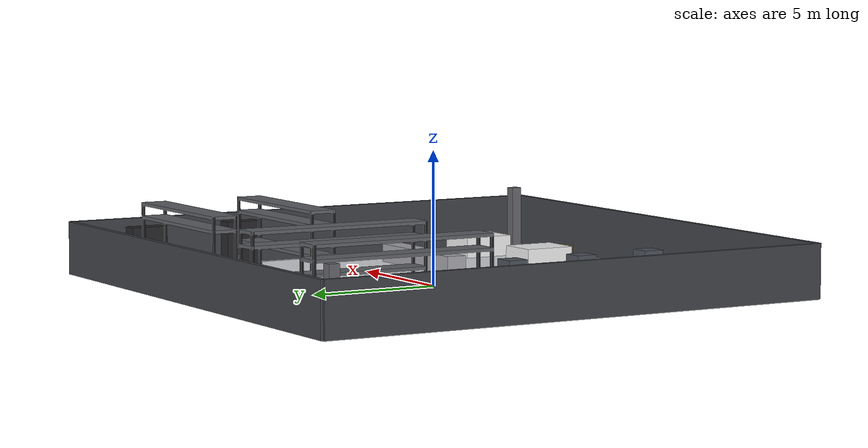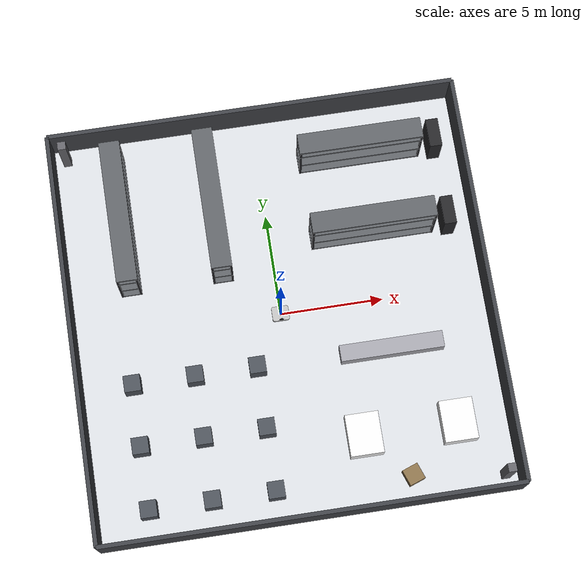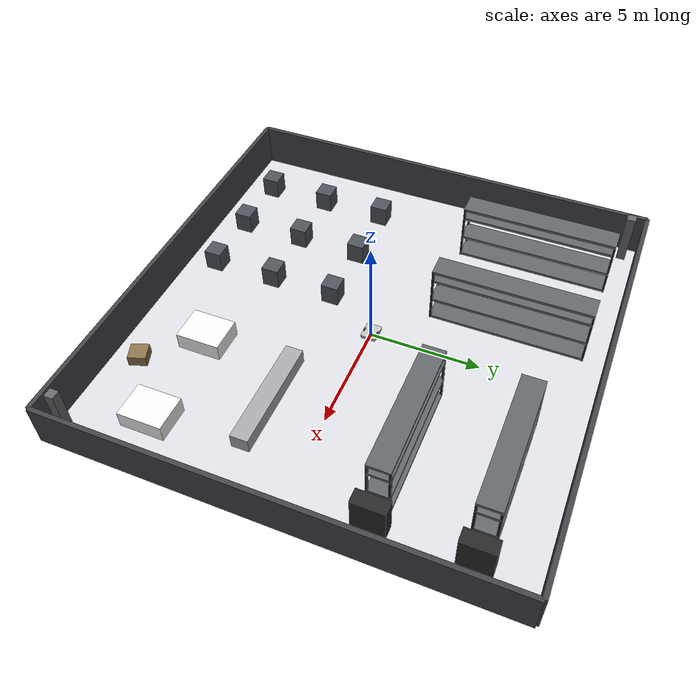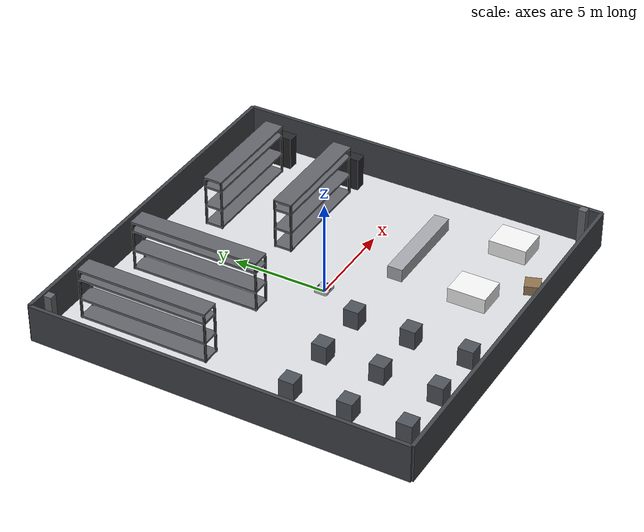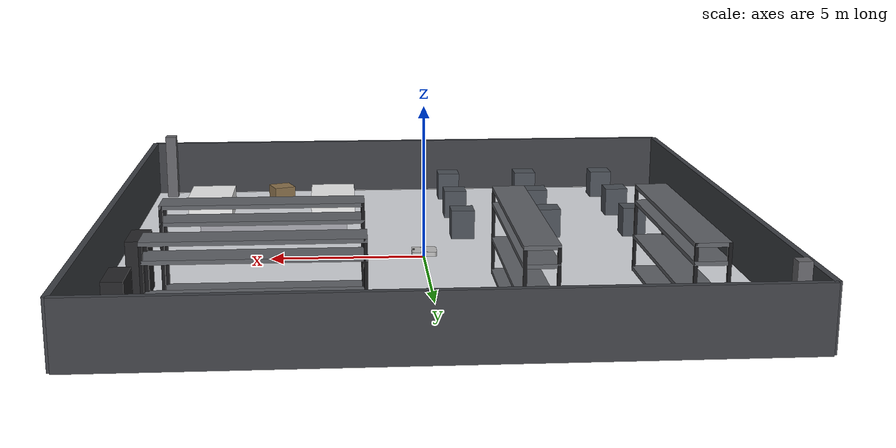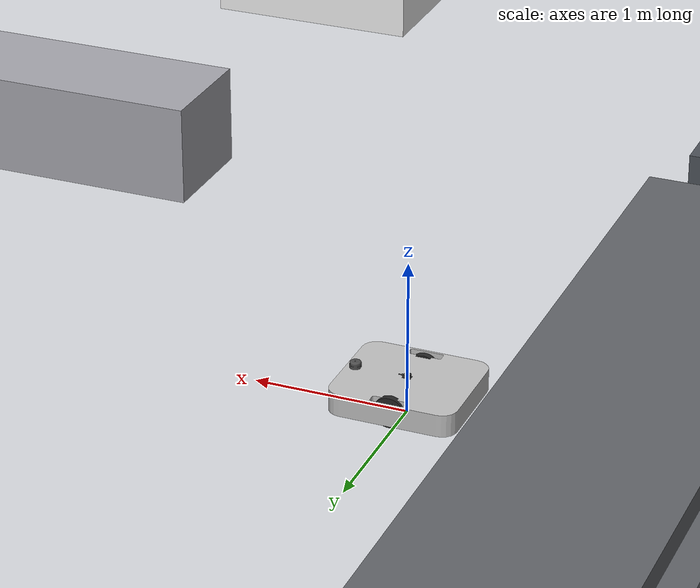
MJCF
<?xml version="1.0" encoding="utf-8"?>
<mujoco model="industrial_warehouse_20x20">

  <compiler angle="degree" meshdir="../meshes" autolimits="true"/>

  <option timestep="0.002" gravity="0 0 -9.81" integrator="implicitfast"/>

  <visual>
    <headlight ambient="0.4 0.4 0.4" diffuse="0.8 0.8 0.8" specular="0.1 0.1 0.1"/>
  </visual>

  <statistic center="0 0 0.2" extent="2.0"/>

  <default>
    <joint damping="0.1" armature="0.001"/>
    <default class="visual">
      <geom type="mesh" contype="0" conaffinity="0" density="0" group="2"/>
    </default>
    <default class="collision">
      <geom group="3" density="0" friction="1.0 0.005 0.0001" solref="0.005 1" solimp="0.9 0.95 0.001"/>
    </default>
  </default>

  <asset>
    <mesh name="base_link_mesh" file="base_link.STL"/>
    <mesh name="left_wheel_mesh" file="left_wheel.STL"/>
    <mesh name="right_wheel_mesh" file="right_wheel.STL"/>
    <mesh name="front_left_caster_mesh" file="front_left_caster.STL"/>
    <mesh name="front_right_caster_mesh" file="front_right_caster.STL"/>
    <mesh name="rear_left_caster_mesh" file="rear_left_caster.STL"/>
    <mesh name="rear_right_caster_mesh" file="rear_right_caster.STL"/>
    <mesh name="imu_mesh" file="imu.STL"/>
    <mesh name="lidar_mesh" file="lidar.STL"/>

    <material name="mat_floor"     rgba="0.85 0.86 0.88 1"/>
    <material name="mat_wall"      rgba="0.25 0.26 0.28 1"/>
    <material name="mat_rack"      rgba="0.15 0.15 0.16 1"/>
    <material name="mat_pod"       rgba="0.30 0.32 0.35 1"/>
    <material name="mat_conveyor"  rgba="0.65 0.65 0.68 1"/>
    <material name="mat_station"   rgba="0.95 0.95 0.95 1"/>
    <material name="mat_pallet"    rgba="0.55 0.45 0.30 1"/>
    <material name="mat_upright"   rgba="0.10 0.10 0.11 1"/>
    <material name="mat_beam"      rgba="0.38 0.39 0.41 1"/>
    <material name="mat_column"    rgba="0.40 0.40 0.42 1"/>
  </asset>

  <worldbody>
    <light directional="true" pos="0 0 10" dir="0 0 -1" diffuse="0.9 0.9 0.9"/>

    <geom name="ground_plane" type="plane" size="10.0 10.0 0.1" material="mat_floor" friction="1.0 0.005 0.0001"/>

    <body name="boundary_walls">
        <geom name="wall_north" type="box" pos="0 10.0 1.0" size="10.0 0.1 1.0" material="mat_wall"/>
        <geom name="wall_south" type="box" pos="0 -10.0 1.0" size="10.0 0.1 1.0" material="mat_wall"/>
        <geom name="wall_east" type="box" pos="10.0 0 1.0" size="0.1 10.0 1.0" material="mat_wall"/>
        <geom name="wall_west" type="box" pos="-10.0 0 1.0" size="0.1 10.0 1.0" material="mat_wall"/>
    </body>

    <body name="zone1_selective_pallet_racking">
        <geom name="rack_tl_1_col" class="collision" type="box" pos="-7.0 5.5 1.4" size="0.5 3.5 1.4" rgba="0.1 0.1 0.1 0.0"/>
        <geom class="visual" type="box" pos="-7.45 2.05 1.4" size="0.05 0.05 1.4" material="mat_upright"/>
        <geom class="visual" type="box" pos="-7.45 8.95 1.4" size="0.05 0.05 1.4" material="mat_upright"/>
        <geom class="visual" type="box" pos="-6.55 2.05 1.4" size="0.05 0.05 1.4" material="mat_upright"/>
        <geom class="visual" type="box" pos="-6.55 8.95 1.4" size="0.05 0.05 1.4" material="mat_upright"/>
        <geom class="visual" type="box" pos="-7.0 5.5 0.08399999999999999" size="0.5 3.5 0.06" material="mat_beam"/>
        <geom class="visual" type="box" pos="-7.0 5.5 1.1199999999999999" size="0.5 3.5 0.06" material="mat_beam"/>
        <geom class="visual" type="box" pos="-7.0 5.5 2.2399999999999998" size="0.5 3.5 0.06" material="mat_beam"/>
        <geom class="visual" type="box" pos="-7.0 5.5 2.7439999999999998" size="0.5 3.5 0.06" material="mat_beam"/>
        <geom name="rack_tl_2_col" class="collision" type="box" pos="-2.5 5.5 1.4" size="0.5 3.5 1.4" rgba="0.1 0.1 0.1 0.0"/>
        <geom class="visual" type="box" pos="-2.95 2.05 1.4" size="0.05 0.05 1.4" material="mat_upright"/>
        <geom class="visual" type="box" pos="-2.95 8.95 1.4" size="0.05 0.05 1.4" material="mat_upright"/>
        <geom class="visual" type="box" pos="-2.05 2.05 1.4" size="0.05 0.05 1.4" material="mat_upright"/>
        <geom class="visual" type="box" pos="-2.05 8.95 1.4" size="0.05 0.05 1.4" material="mat_upright"/>
        <geom class="visual" type="box" pos="-2.5 5.5 0.08399999999999999" size="0.5 3.5 0.06" material="mat_beam"/>
        <geom class="visual" type="box" pos="-2.5 5.5 1.1199999999999999" size="0.5 3.5 0.06" material="mat_beam"/>
        <geom class="visual" type="box" pos="-2.5 5.5 2.2399999999999998" size="0.5 3.5 0.06" material="mat_beam"/>
        <geom class="visual" type="box" pos="-2.5 5.5 2.7439999999999998" size="0.5 3.5 0.06" material="mat_beam"/>
    </body>

    <body name="zone2_dead_end_racking">
        <geom name="rack_tr_1_col" class="collision" type="box" pos="5.0 7.5 1.4" size="3.0 0.5 1.4" rgba="0.1 0.1 0.1 0.0"/>
        <geom class="visual" type="box" pos="2.05 7.05 1.4" size="0.05 0.05 1.4" material="mat_upright"/>
        <geom class="visual" type="box" pos="2.05 7.95 1.4" size="0.05 0.05 1.4" material="mat_upright"/>
        <geom class="visual" type="box" pos="7.95 7.05 1.4" size="0.05 0.05 1.4" material="mat_upright"/>
        <geom class="visual" type="box" pos="7.95 7.95 1.4" size="0.05 0.05 1.4" material="mat_upright"/>
        <geom class="visual" type="box" pos="5.0 7.5 0.08399999999999999" size="3.0 0.5 0.06" material="mat_beam"/>
        <geom class="visual" type="box" pos="5.0 7.5 1.1199999999999999" size="3.0 0.5 0.06" material="mat_beam"/>
        <geom class="visual" type="box" pos="5.0 7.5 2.2399999999999998" size="3.0 0.5 0.06" material="mat_beam"/>
        <geom class="visual" type="box" pos="5.0 7.5 2.7439999999999998" size="3.0 0.5 0.06" material="mat_beam"/>
        <geom name="rack_tr_2_col" class="collision" type="box" pos="5.0 3.5 1.4" size="3.0 0.5 1.4" rgba="0.1 0.1 0.1 0.0"/>
        <geom class="visual" type="box" pos="2.05 3.05 1.4" size="0.05 0.05 1.4" material="mat_upright"/>
        <geom class="visual" type="box" pos="2.05 3.95 1.4" size="0.05 0.05 1.4" material="mat_upright"/>
        <geom class="visual" type="box" pos="7.95 3.05 1.4" size="0.05 0.05 1.4" material="mat_upright"/>
        <geom class="visual" type="box" pos="7.95 3.95 1.4" size="0.05 0.05 1.4" material="mat_upright"/>
        <geom class="visual" type="box" pos="5.0 3.5 0.08399999999999999" size="3.0 0.5 0.06" material="mat_beam"/>
        <geom class="visual" type="box" pos="5.0 3.5 1.1199999999999999" size="3.0 0.5 0.06" material="mat_beam"/>
        <geom class="visual" type="box" pos="5.0 3.5 2.2399999999999998" size="3.0 0.5 0.06" material="mat_beam"/>
        <geom class="visual" type="box" pos="5.0 3.5 2.7439999999999998" size="3.0 0.5 0.06" material="mat_beam"/>
    </body>

    <body name="zone2_deadend_stops">
        <geom name="deadend_block_1" type="box" pos="8.7 7.5 0.9" size="0.3 0.7 0.9" material="mat_rack"/>
        <geom name="deadend_block_2" type="box" pos="8.7 3.5 0.9" size="0.3 0.7 0.9" material="mat_rack"/>
    </body>

    <body name="zone3_kiva_pod_grid">
        <geom name="pod_1_1" type="box" pos="-7.5 -2.5 0.5" size="0.4 0.4 0.5" material="mat_pod"/>
        <geom name="pod_1_2" type="box" pos="-4.5 -2.5 0.5" size="0.4 0.4 0.5" material="mat_pod"/>
        <geom name="pod_1_3" type="box" pos="-1.5 -2.5 0.5" size="0.4 0.4 0.5" material="mat_pod"/>
        <geom name="pod_2_1" type="box" pos="-7.5 -5.5 0.5" size="0.4 0.4 0.5" material="mat_pod"/>
        <geom name="pod_2_2" type="box" pos="-4.5 -5.5 0.5" size="0.4 0.4 0.5" material="mat_pod"/>
        <geom name="pod_2_3" type="box" pos="-1.5 -5.5 0.5" size="0.4 0.4 0.5" material="mat_pod"/>
        <geom name="pod_3_1" type="box" pos="-7.5 -8.5 0.5" size="0.4 0.4 0.5" material="mat_pod"/>
        <geom name="pod_3_2" type="box" pos="-4.5 -8.5 0.5" size="0.4 0.4 0.5" material="mat_pod"/>
        <geom name="pod_3_3" type="box" pos="-1.5 -8.5 0.5" size="0.4 0.4 0.5" material="mat_pod"/>
    </body>

    <body name="zone4_staging_and_packing">
        <geom name="conveyor_main" type="box" pos="5.0 -2.5 0.35" size="2.5 0.4 0.35" material="mat_conveyor"/>
        <geom name="pack_station_1" type="box" pos="3.0 -6.5 0.4" size="0.8 1.0 0.4" material="mat_station"/>
        <geom name="pack_station_2" type="box" pos="7.5 -6.5 0.4" size="0.8 1.0 0.4" material="mat_station"/>
        <geom name="temp_pallet_1" type="box" pos="5.0 -8.7 0.25" euler="0 0 20" size="0.4 0.4 0.25" material="mat_pallet"/>
    </body>

    <body name="zone5_structural_columns">
        <geom name="column_1" type="box" pos="-9.3 9.3 1.2" size="0.2 0.2 1.2" material="mat_column"/>
        <geom name="column_2" type="box" pos="9.3 -9.3 1.2" size="0.2 0.2 1.2" material="mat_column"/>
    </body>

    <body name="base_link" pos="0 0 0.15">
      <freejoint name="base_freejoint"/>
      <inertial pos="-0.01641684226393 -2.127036027730e-08 0.01536357867772" mass="77.76660059782901" fullinertia="3.2338238997685766 4.5790630022931795 7.535284316709289 6.94917763249993e-07 -0.010447117841865663 -5.34948547228727e-08"/>

      <geom name="base_visual" class="visual" mesh="base_link_mesh" rgba="0.75 0.75 0.75 1"/>
      <geom name="base_collision_rear" class="collision" type="box" pos="-0.322 0 0.015" size="0.100 0.357 0.0725" rgba="0.2 0.5 0.8 0.15"/>
      <geom name="base_collision_center" class="collision" type="box" pos="-0.012 0 0.015" size="0.210 0.250 0.0725" rgba="0.2 0.5 0.8 0.15"/>
      <geom name="base_collision_front" class="collision" type="box" pos="0.298 0 0.015" size="0.100 0.357 0.0725" rgba="0.2 0.5 0.8 0.15"/>

      <site name="base_foot_link" type="sphere" pos="0 0 -0.1" size="0.005" rgba="0 1 0 0"/>

      <body name="left_wheel" pos="0 0.297 0" euler="-90 0 0">
        <joint name="left_wheel_jt" type="hinge" axis="0 0 1" limited="false" damping="0.2"/>
        <inertial pos="-2.2767068983e-06 -4.0883539315e-07 -0.0141278415" mass="0.936684355982048" fullinertia="0.0029343491062 0.0029343328072 0.0056452287041 3.0243843436e-09 1.7611681221e-08 3.1625847890e-09"/>
        <geom name="left_wheel_visual" class="visual" mesh="left_wheel_mesh" rgba="0.15 0.15 0.15 1"/>
        <geom name="left_wheel_collision" class="collision" type="cylinder" size="0.1 0.028" friction="1.2 0.01 0.0001" rgba="1 0 0 0.2"/>
      </body>

      <body name="right_wheel" pos="0 -0.297 0" euler="-90 0 0">
        <joint name="right_wheel_jt" type="hinge" axis="0 0 1" limited="false" damping="0.2"/>
        <inertial pos="2.0712286184e-06 -1.0298315041e-06 0.0141278415" mass="0.936684355982047" fullinertia="0.0029343462033 0.0029343357101 0.0056452287041 -6.9306759880e-09 1.6022183872e-08 -7.9663594389e-09"/>
        <geom name="right_wheel_visual" class="visual" mesh="right_wheel_mesh" rgba="0.15 0.15 0.15 1"/>
        <geom name="right_wheel_collision" class="collision" type="cylinder" size="0.1 0.028" friction="1.2 0.01 0.0001" rgba="1 0 0 0.2"/>
      </body>

      <body name="front_left_caster" pos="0.323 0.167 -0.078807">
        <joint name="front_left_caster_jt" type="ball" damping="0.001"/>
        <inertial pos="0 0 -2.7371825402e-05" mass="0.0399091557703669" fullinertia="7.2111462855e-06 7.2111444698e-06 7.2594199749e-06 8.8035157662e-13 -8.7566291737e-14 2.1607959245e-13"/>
        <geom name="caster_front_left_visual" class="visual" mesh="front_left_caster_mesh" rgba="0.2 0.2 0.2 1"/>
        <geom name="caster_front_left_collision" class="collision" type="sphere" size="0.0212" friction="0.35 0.002 0.0001" rgba="0.1 0.8 0.2 0.25"/>
      </body>

      <body name="front_right_caster" pos="0.323 -0.167 -0.078807">
        <joint name="front_right_caster_jt" type="ball" damping="0.001"/>
        <inertial pos="0 0 -2.7371825402e-05" mass="0.0399091557703669" fullinertia="7.2111462855e-06 7.2111444698e-06 7.2594199749e-06 8.8035157716e-13 -8.7566300715e-14 2.1607958912e-13"/>
        <geom name="caster_front_right_visual" class="visual" mesh="front_right_caster_mesh" rgba="0.2 0.2 0.2 1"/>
        <geom name="caster_front_right_collision" class="collision" type="sphere" size="0.0212" friction="0.35 0.002 0.0001" rgba="0.1 0.8 0.2 0.25"/>
      </body>

      <body name="rear_left_caster" pos="-0.347 0.167 -0.078807">
        <joint name="rear_left_caster_jt" type="ball" damping="0.001"/>
        <inertial pos="0 0 -2.7371825402e-05" mass="0.0399091557703668" fullinertia="7.2111462855e-06 7.2111444698e-06 7.2594199749e-06 8.8035157366e-13 -8.7566301701e-14 2.1607958824e-13"/>
        <geom name="caster_rear_left_visual" class="visual" mesh="rear_left_caster_mesh" rgba="0.2 0.2 0.2 1"/>
        <geom name="caster_rear_left_collision" class="collision" type="sphere" size="0.0212" friction="0.35 0.002 0.0001" rgba="0.1 0.8 0.2 0.25"/>
      </body>

      <body name="rear_right_caster" pos="-0.347 -0.167 -0.078807">
        <joint name="rear_right_caster_jt" type="ball" damping="0.001"/>
        <inertial pos="0 0 -2.7371825402e-05" mass="0.0399091557703668" fullinertia="7.2111459706e-06 7.2111447847e-06 7.2594199749e-06 -1.1169235652e-12 -1.2014432927e-13 -1.9980887354e-13"/>
        <geom name="caster_rear_right_visual" class="visual" mesh="rear_right_caster_mesh" rgba="0.2 0.2 0.2 1"/>
        <geom name="caster_rear_right_collision" class="collision" type="sphere" size="0.0212" friction="0.35 0.002 0.0001" rgba="0.1 0.8 0.2 0.25"/>
      </body>

      <body name="imu" pos="0 0 0.1091">
        <inertial pos="0.0023989165 0 -0.0108251693" mass="0.0350113154456988" fullinertia="4.9486481208e-06 8.8682844667e-06 1.1262903048e-05 2.0030538049e-12 -1.7595997497e-08 6.5460652693e-23"/>
        <geom name="imu_visual" class="visual" mesh="imu_mesh" rgba="0.25 0.25 0.25 1"/>
        <site name="imu_site" type="sphere" pos="0 0 0" size="0.005" rgba="1 0.5 0 0"/>
      </body>

      <body name="lidar" pos="0.33152 0 0.11235">
        <inertial pos="0.0038697684 -1.4554375616e-05 -0.0055496380" mass="0.165382751635991" fullinertia="7.8865183611e-05 7.5190291494e-05 1.0994675306e-04 4.8471764092e-08 2.1847944396e-06 2.8860157251e-08"/>
        <geom name="lidar_visual" class="visual" mesh="lidar_mesh" rgba="0.3 0.3 0.3 1"/>
        <site name="lidar_origin" type="sphere" pos="0 0 0" size="0.005" rgba="1 0 0 0"/>
      </body>
    </body>

  </worldbody>

  <sensor>
    <gyro name="imu_gyro" site="imu_site"/>
    <accelerometer name="imu_accelerometer" site="imu_site"/>
    <framequat name="imu_orientation" objtype="site" objname="imu_site"/>
  </sensor>

  <actuator>
    <velocity name="left_wheel_motor" joint="left_wheel_jt" kv="100" ctrlrange="-8.3775804096 8.3775804096" forcerange="-19.1 19.1"/>
    <velocity name="right_wheel_motor" joint="right_wheel_jt" kv="100" ctrlrange="-8.3775804096 8.3775804096" forcerange="-19.1 19.1"/>
  </actuator>
</mujoco>
